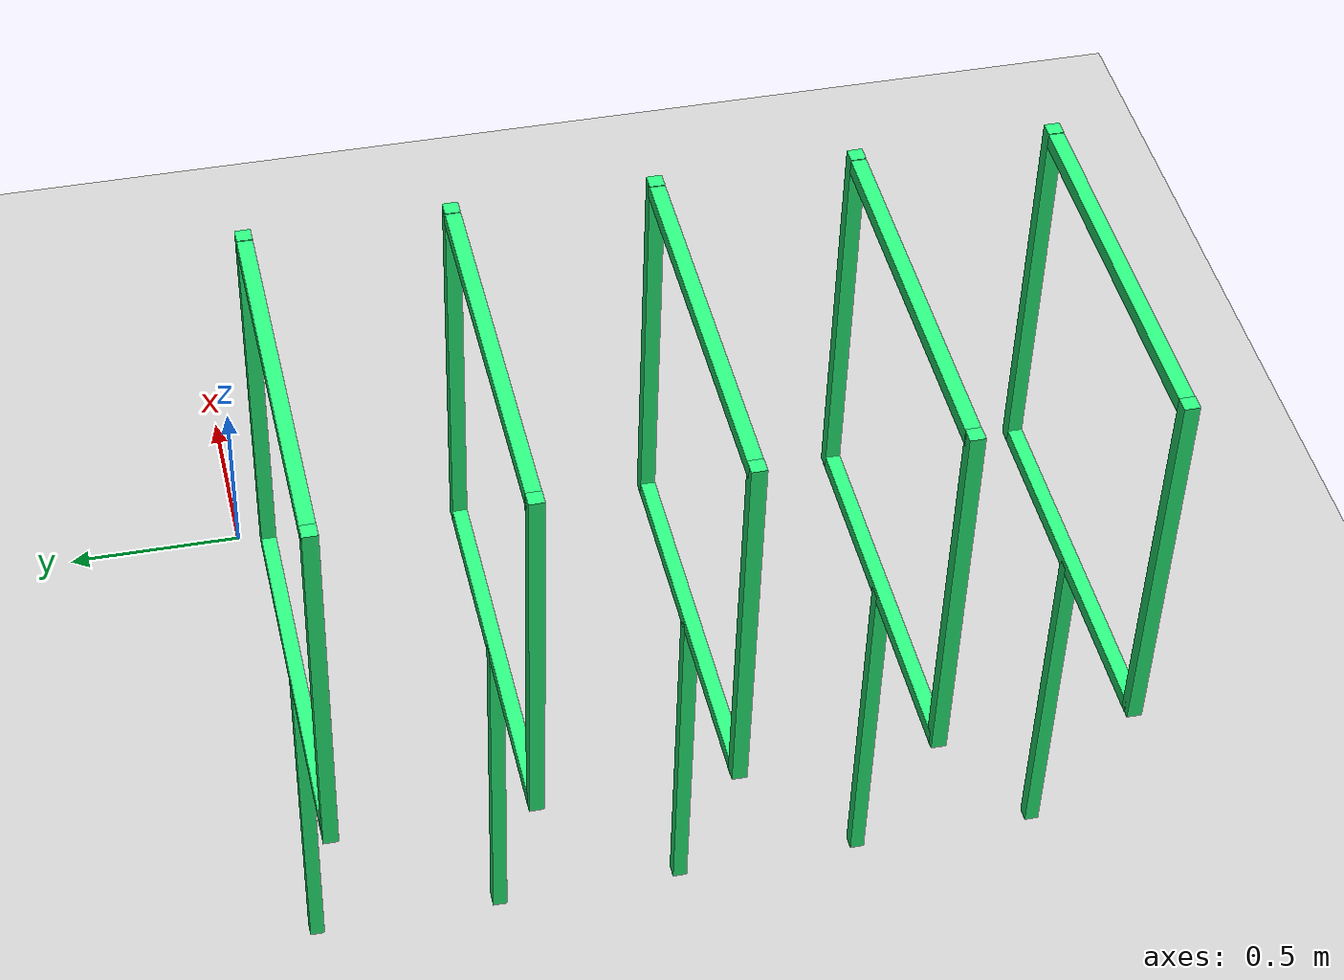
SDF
<sdf version="1.7">
 <world name="default">
  <model name="ground_plane">
   <static>1</static>
   <link name="link">
    <collision name="collision">
     <geometry><plane><normal>0 0 1</normal><size>100 100</size></plane></geometry>
     <surface><friction><ode><mu>100</mu><mu2>50</mu2></ode></friction></surface>
    </collision>
    <visual name="visual">
     <cast_shadows>0</cast_shadows>
     <geometry><plane><normal>0 0 1</normal><size>100 100</size></plane></geometry>
     <material>
      <script><uri>file://media/materials/scripts/gazebo.material</uri><name>Gazebo/Grey</name></script>
     </material>
    </visual>
   </link>
  </model>
  <model name="small_gate_4">
   <link name="rod">
    <pose>0 0 0.5 0 -0 0</pose>
    <inertial>
     <mass>1</mass>
     <inertia>
      <ixx>0.166667</ixx>
      <ixy>0</ixy>
      <ixz>0</ixz>
      <iyy>0.166667</iyy>
      <iyz>0</iyz>
      <izz>0.166667</izz>
     </inertia>
    </inertial>
    <visual name="visual">
     <geometry><box><size>0.0381 0.0381 1</size></box></geometry>
     <material>
      <shader type="vertex"><normal_map>__default__</normal_map></shader>
      <ambient>0.164 0.978 0.484 1</ambient>
      <diffuse>0.164 0.978 0.484 1</diffuse>
      <specular>0.01 0.01 0.01 1</specular>
      <emissive>0 0 0 1</emissive>
     </material>
    </visual>
    <collision name="collision">
     <geometry><box><size>0.0381 0.0381 1</size></box></geometry>
     <surface>
      <friction>
       <ode><mu>1</mu><mu2>1</mu2><fdir1>0 0 0</fdir1><slip1>0</slip1><slip2>0</slip2></ode>
       <torsional>
        <coefficient>1</coefficient>
        <patch_radius>0</patch_radius>
        <surface_radius>0</surface_radius>
        <use_patch_radius>1</use_patch_radius>
        <ode><slip>0</slip></ode>
       </torsional>
      </friction>
      <bounce><restitution_coefficient>0</restitution_coefficient><threshold>1e+06</threshold></bounce>
      <contact>
       <collide_without_contact>0</collide_without_contact>
       <collide_without_contact_bitmask>1</collide_without_contact_bitmask>
       <collide_bitmask>1</collide_bitmask>
       <ode>
        <soft_cfm>0</soft_cfm>
        <soft_erp>0.2</soft_erp>
        <kp>1e+13</kp>
        <kd>1</kd>
        <max_vel>0.01</max_vel>
        <min_depth>0</min_depth>
       </ode>
       <bullet>
        <split_impulse>1</split_impulse>
        <split_impulse_penetration_threshold>-0.01</split_impulse_penetration_threshold>
        <soft_cfm>0</soft_cfm>
        <soft_erp>0.2</soft_erp>
        <kp>1e+13</kp>
        <kd>1</kd>
       </bullet>
      </contact>
     </surface>
    </collision>
   </link>
   <link name="top_edge">
    <pose>0 0 2 0 -0 0</pose>
    <inertial>
     <mass>1</mass>
     <inertia>
      <ixx>0.166667</ixx>
      <ixy>0</ixy>
      <ixz>0</ixz>
      <iyy>0.166667</iyy>
      <iyz>0</iyz>
      <izz>0.166667</izz>
     </inertia>
    </inertial>
    <visual name="visual">
     <geometry><box><size>1 0.0381 0.0381</size></box></geometry>
     <material>
      <shader type="vertex"><normal_map>__default__</normal_map></shader>
      <ambient>0.164 0.978 0.484 1</ambient>
      <diffuse>0.164 0.978 0.484 1</diffuse>
      <specular>0.01 0.01 0.01 1</specular>
      <emissive>0 0 0 1</emissive>
     </material>
    </visual>
    <collision name="collision">
     <geometry><box><size>1 0.0381 0.0381</size></box></geometry>
     <surface>
      <friction>
       <ode><mu>1</mu><mu2>1</mu2><fdir1>0 0 0</fdir1><slip1>0</slip1><slip2>0</slip2></ode>
       <torsional>
        <coefficient>1</coefficient>
        <patch_radius>0</patch_radius>
        <surface_radius>0</surface_radius>
        <use_patch_radius>1</use_patch_radius>
        <ode><slip>0</slip></ode>
       </torsional>
      </friction>
      <bounce><restitution_coefficient>0</restitution_coefficient><threshold>1e+06</threshold></bounce>
      <contact>
       <collide_without_contact>0</collide_without_contact>
       <collide_without_contact_bitmask>1</collide_without_contact_bitmask>
       <collide_bitmask>1</collide_bitmask>
       <ode>
        <soft_cfm>0</soft_cfm>
        <soft_erp>0.2</soft_erp>
        <kp>1e+13</kp>
        <kd>1</kd>
        <max_vel>0.01</max_vel>
        <min_depth>0</min_depth>
       </ode>
       <bullet>
        <split_impulse>1</split_impulse>
        <split_impulse_penetration_threshold>-0.01</split_impulse_penetration_threshold>
        <soft_cfm>0</soft_cfm>
        <soft_erp>0.2</soft_erp>
        <kp>1e+13</kp>
        <kd>1</kd>
       </bullet>
      </contact>
     </surface>
    </collision>
   </link>
   <link name="bottom_edge">
    <pose>0 0 1 0 -0 0</pose>
    <inertial>
     <mass>1</mass>
     <inertia>
      <ixx>0.166667</ixx>
      <ixy>0</ixy>
      <ixz>0</ixz>
      <iyy>0.166667</iyy>
      <iyz>0</iyz>
      <izz>0.166667</izz>
     </inertia>
    </inertial>
    <visual name="visual">
     <geometry><box><size>1 0.0381 0.0381</size></box></geometry>
     <material>
      <shader type="vertex"><normal_map>__default__</normal_map></shader>
      <ambient>0.164 0.978 0.484 1</ambient>
      <diffuse>0.164 0.978 0.484 1</diffuse>
      <specular>0.01 0.01 0.01 1</specular>
      <emissive>0 0 0 1</emissive>
     </material>
    </visual>
    <collision name="collision">
     <geometry><box><size>1 0.0381 0.0381</size></box></geometry>
     <surface>
      <friction>
       <ode><mu>1</mu><mu2>1</mu2><fdir1>0 0 0</fdir1><slip1>0</slip1><slip2>0</slip2></ode>
       <torsional>
        <coefficient>1</coefficient>
        <patch_radius>0</patch_radius>
        <surface_radius>0</surface_radius>
        <use_patch_radius>1</use_patch_radius>
        <ode><slip>0</slip></ode>
       </torsional>
      </friction>
      <bounce><restitution_coefficient>0</restitution_coefficient><threshold>1e+06</threshold></bounce>
      <contact>
       <collide_without_contact>0</collide_without_contact>
       <collide_without_contact_bitmask>1</collide_without_contact_bitmask>
       <collide_bitmask>1</collide_bitmask>
       <ode>
        <soft_cfm>0</soft_cfm>
        <soft_erp>0.2</soft_erp>
        <kp>1e+13</kp>
        <kd>1</kd>
        <max_vel>0.01</max_vel>
        <min_depth>0</min_depth>
       </ode>
       <bullet>
        <split_impulse>1</split_impulse>
        <split_impulse_penetration_threshold>-0.01</split_impulse_penetration_threshold>
        <soft_cfm>0</soft_cfm>
        <soft_erp>0.2</soft_erp>
        <kp>1e+13</kp>
        <kd>1</kd>
       </bullet>
      </contact>
     </surface>
    </collision>
   </link>
   <link name="left_edge">
    <pose>-0.5 0 1.502 0 -0 0</pose>
    <inertial>
     <mass>1</mass>
     <inertia>
      <ixx>0.166667</ixx>
      <ixy>0</ixy>
      <ixz>0</ixz>
      <iyy>0.166667</iyy>
      <iyz>0</iyz>
      <izz>0.166667</izz>
     </inertia>
    </inertial>
    <visual name="visual">
     <geometry><box><size>0.0381 0.0381 1.0381</size></box></geometry>
     <material>
      <shader type="vertex"><normal_map>__default__</normal_map></shader>
      <ambient>0.164 0.978 0.484 1</ambient>
      <diffuse>0.164 0.978 0.484 1</diffuse>
      <specular>0.01 0.01 0.01 1</specular>
      <emissive>0 0 0 1</emissive>
     </material>
    </visual>
    <collision name="collision">
     <geometry><box><size>0.0381 0.0381 1.0381</size></box></geometry>
     <surface>
      <friction>
       <ode><mu>1</mu><mu2>1</mu2><fdir1>0 0 0</fdir1><slip1>0</slip1><slip2>0</slip2></ode>
       <torsional>
        <coefficient>1</coefficient>
        <patch_radius>0</patch_radius>
        <surface_radius>0</surface_radius>
        <use_patch_radius>1</use_patch_radius>
        <ode><slip>0</slip></ode>
       </torsional>
      </friction>
      <bounce><restitution_coefficient>0</restitution_coefficient><threshold>1e+06</threshold></bounce>
      <contact>
       <collide_without_contact>0</collide_without_contact>
       <collide_without_contact_bitmask>1</collide_without_contact_bitmask>
       <collide_bitmask>1</collide_bitmask>
       <ode>
        <soft_cfm>0</soft_cfm>
        <soft_erp>0.2</soft_erp>
        <kp>1e+13</kp>
        <kd>1</kd>
        <max_vel>0.01</max_vel>
        <min_depth>0</min_depth>
       </ode>
       <bullet>
        <split_impulse>1</split_impulse>
        <split_impulse_penetration_threshold>-0.01</split_impulse_penetration_threshold>
        <soft_cfm>0</soft_cfm>
        <soft_erp>0.2</soft_erp>
        <kp>1e+13</kp>
        <kd>1</kd>
       </bullet>
      </contact>
     </surface>
    </collision>
   </link>
   <link name="right_edge">
    <pose>0.5 0 1.502 0 -0 0</pose>
    <inertial>
     <mass>1</mass>
     <inertia>
      <ixx>0.166667</ixx>
      <ixy>0</ixy>
      <ixz>0</ixz>
      <iyy>0.166667</iyy>
      <iyz>0</iyz>
      <izz>0.166667</izz>
     </inertia>
    </inertial>
    <visual name="visual">
     <geometry><box><size>0.0381 0.0381 1.0381</size></box></geometry>
     <material>
      <shader type="vertex"><normal_map>__default__</normal_map></shader>
      <ambient>0.164 0.978 0.484 1</ambient>
      <diffuse>0.164 0.978 0.484 1</diffuse>
      <specular>0.01 0.01 0.01 1</specular>
      <emissive>0 0 0 1</emissive>
     </material>
    </visual>
    <collision name="collision">
     <geometry><box><size>0.0381 0.0381 1.0381</size></box></geometry>
     <surface>
      <friction>
       <ode><mu>1</mu><mu2>1</mu2><fdir1>0 0 0</fdir1><slip1>0</slip1><slip2>0</slip2></ode>
       <torsional>
        <coefficient>1</coefficient>
        <patch_radius>0</patch_radius>
        <surface_radius>0</surface_radius>
        <use_patch_radius>1</use_patch_radius>
        <ode><slip>0</slip></ode>
       </torsional>
      </friction>
      <bounce><restitution_coefficient>0</restitution_coefficient><threshold>1e+06</threshold></bounce>
      <contact>
       <collide_without_contact>0</collide_without_contact>
       <collide_without_contact_bitmask>1</collide_without_contact_bitmask>
       <collide_bitmask>1</collide_bitmask>
       <ode>
        <soft_cfm>0</soft_cfm>
        <soft_erp>0.2</soft_erp>
        <kp>1e+13</kp>
        <kd>1</kd>
        <max_vel>0.01</max_vel>
        <min_depth>0</min_depth>
       </ode>
       <bullet>
        <split_impulse>1</split_impulse>
        <split_impulse_penetration_threshold>-0.01</split_impulse_penetration_threshold>
        <soft_cfm>0</soft_cfm>
        <soft_erp>0.2</soft_erp>
        <kp>1e+13</kp>
        <kd>1</kd>
       </bullet>
      </contact>
     </surface>
    </collision>
   </link>
   <static>1</static>
   <pose>-1.5 -2 0 0 -0 0</pose>
  </model>
  <model name="small_gate_5">
   <link name="rod">
    <pose>0 0 0.5 0 -0 0</pose>
    <inertial>
     <mass>1</mass>
     <inertia>
      <ixx>0.166667</ixx>
      <ixy>0</ixy>
      <ixz>0</ixz>
      <iyy>0.166667</iyy>
      <iyz>0</iyz>
      <izz>0.166667</izz>
     </inertia>
    </inertial>
    <visual name="visual">
     <geometry><box><size>0.0381 0.0381 1</size></box></geometry>
     <material>
      <shader type="vertex"><normal_map>__default__</normal_map></shader>
      <ambient>0.164 0.978 0.484 1</ambient>
      <diffuse>0.164 0.978 0.484 1</diffuse>
      <specular>0.01 0.01 0.01 1</specular>
      <emissive>0 0 0 1</emissive>
     </material>
    </visual>
    <collision name="collision">
     <geometry><box><size>0.0381 0.0381 1</size></box></geometry>
     <surface>
      <friction>
       <ode><mu>1</mu><mu2>1</mu2><fdir1>0 0 0</fdir1><slip1>0</slip1><slip2>0</slip2></ode>
       <torsional>
        <coefficient>1</coefficient>
        <patch_radius>0</patch_radius>
        <surface_radius>0</surface_radius>
        <use_patch_radius>1</use_patch_radius>
        <ode><slip>0</slip></ode>
       </torsional>
      </friction>
      <bounce><restitution_coefficient>0</restitution_coefficient><threshold>1e+06</threshold></bounce>
      <contact>
       <collide_without_contact>0</collide_without_contact>
       <collide_without_contact_bitmask>1</collide_without_contact_bitmask>
       <collide_bitmask>1</collide_bitmask>
       <ode>
        <soft_cfm>0</soft_cfm>
        <soft_erp>0.2</soft_erp>
        <kp>1e+13</kp>
        <kd>1</kd>
        <max_vel>0.01</max_vel>
        <min_depth>0</min_depth>
       </ode>
       <bullet>
        <split_impulse>1</split_impulse>
        <split_impulse_penetration_threshold>-0.01</split_impulse_penetration_threshold>
        <soft_cfm>0</soft_cfm>
        <soft_erp>0.2</soft_erp>
        <kp>1e+13</kp>
        <kd>1</kd>
       </bullet>
      </contact>
     </surface>
    </collision>
   </link>
   <link name="top_edge">
    <pose>0 0 2 0 -0 0</pose>
    <inertial>
     <mass>1</mass>
     <inertia>
      <ixx>0.166667</ixx>
      <ixy>0</ixy>
      <ixz>0</ixz>
      <iyy>0.166667</iyy>
      <iyz>0</iyz>
      <izz>0.166667</izz>
     </inertia>
    </inertial>
    <visual name="visual">
     <geometry><box><size>1 0.0381 0.0381</size></box></geometry>
     <material>
      <shader type="vertex"><normal_map>__default__</normal_map></shader>
      <ambient>0.164 0.978 0.484 1</ambient>
      <diffuse>0.164 0.978 0.484 1</diffuse>
      <specular>0.01 0.01 0.01 1</specular>
      <emissive>0 0 0 1</emissive>
     </material>
    </visual>
    <collision name="collision">
     <geometry><box><size>1 0.0381 0.0381</size></box></geometry>
     <surface>
      <friction>
       <ode><mu>1</mu><mu2>1</mu2><fdir1>0 0 0</fdir1><slip1>0</slip1><slip2>0</slip2></ode>
       <torsional>
        <coefficient>1</coefficient>
        <patch_radius>0</patch_radius>
        <surface_radius>0</surface_radius>
        <use_patch_radius>1</use_patch_radius>
        <ode><slip>0</slip></ode>
       </torsional>
      </friction>
      <bounce><restitution_coefficient>0</restitution_coefficient><threshold>1e+06</threshold></bounce>
      <contact>
       <collide_without_contact>0</collide_without_contact>
       <collide_without_contact_bitmask>1</collide_without_contact_bitmask>
       <collide_bitmask>1</collide_bitmask>
       <ode>
        <soft_cfm>0</soft_cfm>
        <soft_erp>0.2</soft_erp>
        <kp>1e+13</kp>
        <kd>1</kd>
        <max_vel>0.01</max_vel>
        <min_depth>0</min_depth>
       </ode>
       <bullet>
        <split_impulse>1</split_impulse>
        <split_impulse_penetration_threshold>-0.01</split_impulse_penetration_threshold>
        <soft_cfm>0</soft_cfm>
        <soft_erp>0.2</soft_erp>
        <kp>1e+13</kp>
        <kd>1</kd>
       </bullet>
      </contact>
     </surface>
    </collision>
   </link>
   <link name="bottom_edge">
    <pose>0 0 1 0 -0 0</pose>
    <inertial>
     <mass>1</mass>
     <inertia>
      <ixx>0.166667</ixx>
      <ixy>0</ixy>
      <ixz>0</ixz>
      <iyy>0.166667</iyy>
      <iyz>0</iyz>
      <izz>0.166667</izz>
     </inertia>
    </inertial>
    <visual name="visual">
     <geometry><box><size>1 0.0381 0.0381</size></box></geometry>
     <material>
      <shader type="vertex"><normal_map>__default__</normal_map></shader>
      <ambient>0.164 0.978 0.484 1</ambient>
      <diffuse>0.164 0.978 0.484 1</diffuse>
      <specular>0.01 0.01 0.01 1</specular>
      <emissive>0 0 0 1</emissive>
     </material>
    </visual>
    <collision name="collision">
     <geometry><box><size>1 0.0381 0.0381</size></box></geometry>
     <surface>
      <friction>
       <ode><mu>1</mu><mu2>1</mu2><fdir1>0 0 0</fdir1><slip1>0</slip1><slip2>0</slip2></ode>
       <torsional>
        <coefficient>1</coefficient>
        <patch_radius>0</patch_radius>
        <surface_radius>0</surface_radius>
        <use_patch_radius>1</use_patch_radius>
        <ode><slip>0</slip></ode>
       </torsional>
      </friction>
      <bounce><restitution_coefficient>0</restitution_coefficient><threshold>1e+06</threshold></bounce>
      <contact>
       <collide_without_contact>0</collide_without_contact>
       <collide_without_contact_bitmask>1</collide_without_contact_bitmask>
       <collide_bitmask>1</collide_bitmask>
       <ode>
        <soft_cfm>0</soft_cfm>
        <soft_erp>0.2</soft_erp>
        <kp>1e+13</kp>
        <kd>1</kd>
        <max_vel>0.01</max_vel>
        <min_depth>0</min_depth>
       </ode>
       <bullet>
        <split_impulse>1</split_impulse>
        <split_impulse_penetration_threshold>-0.01</split_impulse_penetration_threshold>
        <soft_cfm>0</soft_cfm>
        <soft_erp>0.2</soft_erp>
        <kp>1e+13</kp>
        <kd>1</kd>
       </bullet>
      </contact>
     </surface>
    </collision>
   </link>
   <link name="left_edge">
    <pose>-0.5 0 1.502 0 -0 0</pose>
    <inertial>
     <mass>1</mass>
     <inertia>
      <ixx>0.166667</ixx>
      <ixy>0</ixy>
      <ixz>0</ixz>
      <iyy>0.166667</iyy>
      <iyz>0</iyz>
      <izz>0.166667</izz>
     </inertia>
    </inertial>
    <visual name="visual">
     <geometry><box><size>0.0381 0.0381 1.0381</size></box></geometry>
     <material>
      <shader type="vertex"><normal_map>__default__</normal_map></shader>
      <ambient>0.164 0.978 0.484 1</ambient>
      <diffuse>0.164 0.978 0.484 1</diffuse>
      <specular>0.01 0.01 0.01 1</specular>
      <emissive>0 0 0 1</emissive>
     </material>
    </visual>
    <collision name="collision">
     <geometry><box><size>0.0381 0.0381 1.0381</size></box></geometry>
     <surface>
      <friction>
       <ode><mu>1</mu><mu2>1</mu2><fdir1>0 0 0</fdir1><slip1>0</slip1><slip2>0</slip2></ode>
       <torsional>
        <coefficient>1</coefficient>
        <patch_radius>0</patch_radius>
        <surface_radius>0</surface_radius>
        <use_patch_radius>1</use_patch_radius>
        <ode><slip>0</slip></ode>
       </torsional>
      </friction>
      <bounce><restitution_coefficient>0</restitution_coefficient><threshold>1e+06</threshold></bounce>
      <contact>
       <collide_without_contact>0</collide_without_contact>
       <collide_without_contact_bitmask>1</collide_without_contact_bitmask>
       <collide_bitmask>1</collide_bitmask>
       <ode>
        <soft_cfm>0</soft_cfm>
        <soft_erp>0.2</soft_erp>
        <kp>1e+13</kp>
        <kd>1</kd>
        <max_vel>0.01</max_vel>
        <min_depth>0</min_depth>
       </ode>
       <bullet>
        <split_impulse>1</split_impulse>
        <split_impulse_penetration_threshold>-0.01</split_impulse_penetration_threshold>
        <soft_cfm>0</soft_cfm>
        <soft_erp>0.2</soft_erp>
        <kp>1e+13</kp>
        <kd>1</kd>
       </bullet>
      </contact>
     </surface>
    </collision>
   </link>
   <link name="right_edge">
    <pose>0.5 0 1.502 0 -0 0</pose>
    <inertial>
     <mass>1</mass>
     <inertia>
      <ixx>0.166667</ixx>
      <ixy>0</ixy>
      <ixz>0</ixz>
      <iyy>0.166667</iyy>
      <iyz>0</iyz>
      <izz>0.166667</izz>
     </inertia>
    </inertial>
    <visual name="visual">
     <geometry><box><size>0.0381 0.0381 1.0381</size></box></geometry>
     <material>
      <shader type="vertex"><normal_map>__default__</normal_map></shader>
      <ambient>0.164 0.978 0.484 1</ambient>
      <diffuse>0.164 0.978 0.484 1</diffuse>
      <specular>0.01 0.01 0.01 1</specular>
      <emissive>0 0 0 1</emissive>
     </material>
    </visual>
    <collision name="collision">
     <geometry><box><size>0.0381 0.0381 1.0381</size></box></geometry>
     <surface>
      <friction>
       <ode><mu>1</mu><mu2>1</mu2><fdir1>0 0 0</fdir1><slip1>0</slip1><slip2>0</slip2></ode>
       <torsional>
        <coefficient>1</coefficient>
        <patch_radius>0</patch_radius>
        <surface_radius>0</surface_radius>
        <use_patch_radius>1</use_patch_radius>
        <ode><slip>0</slip></ode>
       </torsional>
      </friction>
      <bounce><restitution_coefficient>0</restitution_coefficient><threshold>1e+06</threshold></bounce>
      <contact>
       <collide_without_contact>0</collide_without_contact>
       <collide_without_contact_bitmask>1</collide_without_contact_bitmask>
       <collide_bitmask>1</collide_bitmask>
       <ode>
        <soft_cfm>0</soft_cfm>
        <soft_erp>0.2</soft_erp>
        <kp>1e+13</kp>
        <kd>1</kd>
        <max_vel>0.01</max_vel>
        <min_depth>0</min_depth>
       </ode>
       <bullet>
        <split_impulse>1</split_impulse>
        <split_impulse_penetration_threshold>-0.01</split_impulse_penetration_threshold>
        <soft_cfm>0</soft_cfm>
        <soft_erp>0.2</soft_erp>
        <kp>1e+13</kp>
        <kd>1</kd>
       </bullet>
      </contact>
     </surface>
    </collision>
   </link>
   <static>1</static>
   <pose>-1.5 -1.5 0 0 -0 0</pose>
  </model>
  <model name="small_gate_6">
   <link name="rod">
    <pose>0 0 0.5 0 -0 0</pose>
    <inertial>
     <mass>1</mass>
     <inertia>
      <ixx>0.166667</ixx>
      <ixy>0</ixy>
      <ixz>0</ixz>
      <iyy>0.166667</iyy>
      <iyz>0</iyz>
      <izz>0.166667</izz>
     </inertia>
    </inertial>
    <visual name="visual">
     <geometry><box><size>0.0381 0.0381 1</size></box></geometry>
     <material>
      <shader type="vertex"><normal_map>__default__</normal_map></shader>
      <ambient>0.164 0.978 0.484 1</ambient>
      <diffuse>0.164 0.978 0.484 1</diffuse>
      <specular>0.01 0.01 0.01 1</specular>
      <emissive>0 0 0 1</emissive>
     </material>
    </visual>
    <collision name="collision">
     <geometry><box><size>0.0381 0.0381 1</size></box></geometry>
     <surface>
      <friction>
       <ode><mu>1</mu><mu2>1</mu2><fdir1>0 0 0</fdir1><slip1>0</slip1><slip2>0</slip2></ode>
       <torsional>
        <coefficient>1</coefficient>
        <patch_radius>0</patch_radius>
        <surface_radius>0</surface_radius>
        <use_patch_radius>1</use_patch_radius>
        <ode><slip>0</slip></ode>
       </torsional>
      </friction>
      <bounce><restitution_coefficient>0</restitution_coefficient><threshold>1e+06</threshold></bounce>
      <contact>
       <collide_without_contact>0</collide_without_contact>
       <collide_without_contact_bitmask>1</collide_without_contact_bitmask>
       <collide_bitmask>1</collide_bitmask>
       <ode>
        <soft_cfm>0</soft_cfm>
        <soft_erp>0.2</soft_erp>
        <kp>1e+13</kp>
        <kd>1</kd>
        <max_vel>0.01</max_vel>
        <min_depth>0</min_depth>
       </ode>
       <bullet>
        <split_impulse>1</split_impulse>
        <split_impulse_penetration_threshold>-0.01</split_impulse_penetration_threshold>
        <soft_cfm>0</soft_cfm>
        <soft_erp>0.2</soft_erp>
        <kp>1e+13</kp>
        <kd>1</kd>
       </bullet>
      </contact>
     </surface>
    </collision>
   </link>
   <link name="top_edge">
    <pose>0 0 2 0 -0 0</pose>
    <inertial>
     <mass>1</mass>
     <inertia>
      <ixx>0.166667</ixx>
      <ixy>0</ixy>
      <ixz>0</ixz>
      <iyy>0.166667</iyy>
      <iyz>0</iyz>
      <izz>0.166667</izz>
     </inertia>
    </inertial>
    <visual name="visual">
     <geometry><box><size>1 0.0381 0.0381</size></box></geometry>
     <material>
      <shader type="vertex"><normal_map>__default__</normal_map></shader>
      <ambient>0.164 0.978 0.484 1</ambient>
      <diffuse>0.164 0.978 0.484 1</diffuse>
      <specular>0.01 0.01 0.01 1</specular>
      <emissive>0 0 0 1</emissive>
     </material>
    </visual>
    <collision name="collision">
     <geometry><box><size>1 0.0381 0.0381</size></box></geometry>
     <surface>
      <friction>
       <ode><mu>1</mu><mu2>1</mu2><fdir1>0 0 0</fdir1><slip1>0</slip1><slip2>0</slip2></ode>
       <torsional>
        <coefficient>1</coefficient>
        <patch_radius>0</patch_radius>
        <surface_radius>0</surface_radius>
        <use_patch_radius>1</use_patch_radius>
        <ode><slip>0</slip></ode>
       </torsional>
      </friction>
      <bounce><restitution_coefficient>0</restitution_coefficient><threshold>1e+06</threshold></bounce>
      <contact>
       <collide_without_contact>0</collide_without_contact>
       <collide_without_contact_bitmask>1</collide_without_contact_bitmask>
       <collide_bitmask>1</collide_bitmask>
       <ode>
        <soft_cfm>0</soft_cfm>
        <soft_erp>0.2</soft_erp>
        <kp>1e+13</kp>
        <kd>1</kd>
        <max_vel>0.01</max_vel>
        <min_depth>0</min_depth>
       </ode>
       <bullet>
        <split_impulse>1</split_impulse>
        <split_impulse_penetration_threshold>-0.01</split_impulse_penetration_threshold>
        <soft_cfm>0</soft_cfm>
        <soft_erp>0.2</soft_erp>
        <kp>1e+13</kp>
        <kd>1</kd>
       </bullet>
      </contact>
     </surface>
    </collision>
   </link>
   <link name="bottom_edge">
    <pose>0 0 1 0 -0 0</pose>
    <inertial>
     <mass>1</mass>
     <inertia>
      <ixx>0.166667</ixx>
      <ixy>0</ixy>
      <ixz>0</ixz>
      <iyy>0.166667</iyy>
      <iyz>0</iyz>
      <izz>0.166667</izz>
     </inertia>
    </inertial>
    <visual name="visual">
     <geometry><box><size>1 0.0381 0.0381</size></box></geometry>
     <material>
      <shader type="vertex"><normal_map>__default__</normal_map></shader>
      <ambient>0.164 0.978 0.484 1</ambient>
      <diffuse>0.164 0.978 0.484 1</diffuse>
      <specular>0.01 0.01 0.01 1</specular>
      <emissive>0 0 0 1</emissive>
     </material>
    </visual>
    <collision name="collision">
     <geometry><box><size>1 0.0381 0.0381</size></box></geometry>
     <surface>
      <friction>
       <ode><mu>1</mu><mu2>1</mu2><fdir1>0 0 0</fdir1><slip1>0</slip1><slip2>0</slip2></ode>
       <torsional>
        <coefficient>1</coefficient>
        <patch_radius>0</patch_radius>
        <surface_radius>0</surface_radius>
        <use_patch_radius>1</use_patch_radius>
        <ode><slip>0</slip></ode>
       </torsional>
      </friction>
      <bounce><restitution_coefficient>0</restitution_coefficient><threshold>1e+06</threshold></bounce>
      <contact>
       <collide_without_contact>0</collide_without_contact>
       <collide_without_contact_bitmask>1</collide_without_contact_bitmask>
       <collide_bitmask>1</collide_bitmask>
       <ode>
        <soft_cfm>0</soft_cfm>
        <soft_erp>0.2</soft_erp>
        <kp>1e+13</kp>
        <kd>1</kd>
        <max_vel>0.01</max_vel>
        <min_depth>0</min_depth>
       </ode>
       <bullet>
        <split_impulse>1</split_impulse>
        <split_impulse_penetration_threshold>-0.01</split_impulse_penetration_threshold>
        <soft_cfm>0</soft_cfm>
        <soft_erp>0.2</soft_erp>
        <kp>1e+13</kp>
        <kd>1</kd>
       </bullet>
      </contact>
     </surface>
    </collision>
   </link>
   <link name="left_edge">
    <pose>-0.5 0 1.502 0 -0 0</pose>
    <inertial>
     <mass>1</mass>
     <inertia>
      <ixx>0.166667</ixx>
      <ixy>0</ixy>
      <ixz>0</ixz>
      <iyy>0.166667</iyy>
      <iyz>0</iyz>
      <izz>0.166667</izz>
     </inertia>
    </inertial>
    <visual name="visual">
     <geometry><box><size>0.0381 0.0381 1.0381</size></box></geometry>
     <material>
      <shader type="vertex"><normal_map>__default__</normal_map></shader>
      <ambient>0.164 0.978 0.484 1</ambient>
      <diffuse>0.164 0.978 0.484 1</diffuse>
      <specular>0.01 0.01 0.01 1</specular>
      <emissive>0 0 0 1</emissive>
     </material>
    </visual>
    <collision name="collision">
     <geometry><box><size>0.0381 0.0381 1.0381</size></box></geometry>
     <surface>
      <friction>
       <ode><mu>1</mu><mu2>1</mu2><fdir1>0 0 0</fdir1><slip1>0</slip1><slip2>0</slip2></ode>
       <torsional>
        <coefficient>1</coefficient>
        <patch_radius>0</patch_radius>
        <surface_radius>0</surface_radius>
        <use_patch_radius>1</use_patch_radius>
        <ode><slip>0</slip></ode>
       </torsional>
      </friction>
      <bounce><restitution_coefficient>0</restitution_coefficient><threshold>1e+06</threshold></bounce>
      <contact>
       <collide_without_contact>0</collide_without_contact>
       <collide_without_contact_bitmask>1</collide_without_contact_bitmask>
       <collide_bitmask>1</collide_bitmask>
       <ode>
        <soft_cfm>0</soft_cfm>
        <soft_erp>0.2</soft_erp>
        <kp>1e+13</kp>
        <kd>1</kd>
        <max_vel>0.01</max_vel>
        <min_depth>0</min_depth>
       </ode>
       <bullet>
        <split_impulse>1</split_impulse>
        <split_impulse_penetration_threshold>-0.01</split_impulse_penetration_threshold>
        <soft_cfm>0</soft_cfm>
        <soft_erp>0.2</soft_erp>
        <kp>1e+13</kp>
        <kd>1</kd>
       </bullet>
      </contact>
     </surface>
    </collision>
   </link>
   <link name="right_edge">
    <pose>0.5 0 1.502 0 -0 0</pose>
    <inertial>
     <mass>1</mass>
     <inertia>
      <ixx>0.166667</ixx>
      <ixy>0</ixy>
      <ixz>0</ixz>
      <iyy>0.166667</iyy>
      <iyz>0</iyz>
      <izz>0.166667</izz>
     </inertia>
    </inertial>
    <visual name="visual">
     <geometry><box><size>0.0381 0.0381 1.0381</size></box></geometry>
     <material>
      <shader type="vertex"><normal_map>__default__</normal_map></shader>
      <ambient>0.164 0.978 0.484 1</ambient>
      <diffuse>0.164 0.978 0.484 1</diffuse>
      <specular>0.01 0.01 0.01 1</specular>
      <emissive>0 0 0 1</emissive>
     </material>
    </visual>
    <collision name="collision">
     <geometry><box><size>0.0381 0.0381 1.0381</size></box></geometry>
     <surface>
      <friction>
       <ode><mu>1</mu><mu2>1</mu2><fdir1>0 0 0</fdir1><slip1>0</slip1><slip2>0</slip2></ode>
       <torsional>
        <coefficient>1</coefficient>
        <patch_radius>0</patch_radius>
        <surface_radius>0</surface_radius>
        <use_patch_radius>1</use_patch_radius>
        <ode><slip>0</slip></ode>
       </torsional>
      </friction>
      <bounce><restitution_coefficient>0</restitution_coefficient><threshold>1e+06</threshold></bounce>
      <contact>
       <collide_without_contact>0</collide_without_contact>
       <collide_without_contact_bitmask>1</collide_without_contact_bitmask>
       <collide_bitmask>1</collide_bitmask>
       <ode>
        <soft_cfm>0</soft_cfm>
        <soft_erp>0.2</soft_erp>
        <kp>1e+13</kp>
        <kd>1</kd>
        <max_vel>0.01</max_vel>
        <min_depth>0</min_depth>
       </ode>
       <bullet>
        <split_impulse>1</split_impulse>
        <split_impulse_penetration_threshold>-0.01</split_impulse_penetration_threshold>
        <soft_cfm>0</soft_cfm>
        <soft_erp>0.2</soft_erp>
        <kp>1e+13</kp>
        <kd>1</kd>
       </bullet>
      </contact>
     </surface>
    </collision>
   </link>
   <static>1</static>
   <pose>-1.5 -1 0 0 -0 0</pose>
  </model>
  <model name="small_gate_7">
   <link name="rod">
    <pose>0 0 0.5 0 -0 0</pose>
    <inertial>
     <mass>1</mass>
     <inertia>
      <ixx>0.166667</ixx>
      <ixy>0</ixy>
      <ixz>0</ixz>
      <iyy>0.166667</iyy>
      <iyz>0</iyz>
      <izz>0.166667</izz>
     </inertia>
    </inertial>
    <visual name="visual">
     <geometry><box><size>0.0381 0.0381 1</size></box></geometry>
     <material>
      <shader type="vertex"><normal_map>__default__</normal_map></shader>
      <ambient>0.164 0.978 0.484 1</ambient>
      <diffuse>0.164 0.978 0.484 1</diffuse>
      <specular>0.01 0.01 0.01 1</specular>
      <emissive>0 0 0 1</emissive>
     </material>
    </visual>
    <collision name="collision">
     <geometry><box><size>0.0381 0.0381 1</size></box></geometry>
     <surface>
      <friction>
       <ode><mu>1</mu><mu2>1</mu2><fdir1>0 0 0</fdir1><slip1>0</slip1><slip2>0</slip2></ode>
       <torsional>
        <coefficient>1</coefficient>
        <patch_radius>0</patch_radius>
        <surface_radius>0</surface_radius>
        <use_patch_radius>1</use_patch_radius>
        <ode><slip>0</slip></ode>
       </torsional>
      </friction>
      <bounce><restitution_coefficient>0</restitution_coefficient><threshold>1e+06</threshold></bounce>
      <contact>
       <collide_without_contact>0</collide_without_contact>
       <collide_without_contact_bitmask>1</collide_without_contact_bitmask>
       <collide_bitmask>1</collide_bitmask>
       <ode>
        <soft_cfm>0</soft_cfm>
        <soft_erp>0.2</soft_erp>
        <kp>1e+13</kp>
        <kd>1</kd>
        <max_vel>0.01</max_vel>
        <min_depth>0</min_depth>
       </ode>
       <bullet>
        <split_impulse>1</split_impulse>
        <split_impulse_penetration_threshold>-0.01</split_impulse_penetration_threshold>
        <soft_cfm>0</soft_cfm>
        <soft_erp>0.2</soft_erp>
        <kp>1e+13</kp>
        <kd>1</kd>
       </bullet>
      </contact>
     </surface>
    </collision>
   </link>
   <link name="top_edge">
    <pose>0 0 2 0 -0 0</pose>
    <inertial>
     <mass>1</mass>
     <inertia>
      <ixx>0.166667</ixx>
      <ixy>0</ixy>
      <ixz>0</ixz>
      <iyy>0.166667</iyy>
      <iyz>0</iyz>
      <izz>0.166667</izz>
     </inertia>
    </inertial>
    <visual name="visual">
     <geometry><box><size>1 0.0381 0.0381</size></box></geometry>
     <material>
      <shader type="vertex"><normal_map>__default__</normal_map></shader>
      <ambient>0.164 0.978 0.484 1</ambient>
      <diffuse>0.164 0.978 0.484 1</diffuse>
      <specular>0.01 0.01 0.01 1</specular>
      <emissive>0 0 0 1</emissive>
     </material>
    </visual>
    <collision name="collision">
     <geometry><box><size>1 0.0381 0.0381</size></box></geometry>
     <surface>
      <friction>
       <ode><mu>1</mu><mu2>1</mu2><fdir1>0 0 0</fdir1><slip1>0</slip1><slip2>0</slip2></ode>
       <torsional>
        <coefficient>1</coefficient>
        <patch_radius>0</patch_radius>
        <surface_radius>0</surface_radius>
        <use_patch_radius>1</use_patch_radius>
        <ode><slip>0</slip></ode>
       </torsional>
      </friction>
      <bounce><restitution_coefficient>0</restitution_coefficient><threshold>1e+06</threshold></bounce>
      <contact>
       <collide_without_contact>0</collide_without_contact>
       <collide_without_contact_bitmask>1</collide_without_contact_bitmask>
       <collide_bitmask>1</collide_bitmask>
       <ode>
        <soft_cfm>0</soft_cfm>
        <soft_erp>0.2</soft_erp>
        <kp>1e+13</kp>
        <kd>1</kd>
        <max_vel>0.01</max_vel>
        <min_depth>0</min_depth>
       </ode>
       <bullet>
        <split_impulse>1</split_impulse>
        <split_impulse_penetration_threshold>-0.01</split_impulse_penetration_threshold>
        <soft_cfm>0</soft_cfm>
        <soft_erp>0.2</soft_erp>
        <kp>1e+13</kp>
        <kd>1</kd>
       </bullet>
      </contact>
     </surface>
    </collision>
   </link>
   <link name="bottom_edge">
    <pose>0 0 1 0 -0 0</pose>
    <inertial>
     <mass>1</mass>
     <inertia>
      <ixx>0.166667</ixx>
      <ixy>0</ixy>
      <ixz>0</ixz>
      <iyy>0.166667</iyy>
      <iyz>0</iyz>
      <izz>0.166667</izz>
     </inertia>
    </inertial>
    <visual name="visual">
     <geometry><box><size>1 0.0381 0.0381</size></box></geometry>
     <material>
      <shader type="vertex"><normal_map>__default__</normal_map></shader>
      <ambient>0.164 0.978 0.484 1</ambient>
      <diffuse>0.164 0.978 0.484 1</diffuse>
      <specular>0.01 0.01 0.01 1</specular>
      <emissive>0 0 0 1</emissive>
     </material>
    </visual>
    <collision name="collision">
     <geometry><box><size>1 0.0381 0.0381</size></box></geometry>
     <surface>
      <friction>
       <ode><mu>1</mu><mu2>1</mu2><fdir1>0 0 0</fdir1><slip1>0</slip1><slip2>0</slip2></ode>
       <torsional>
        <coefficient>1</coefficient>
        <patch_radius>0</patch_radius>
        <surface_radius>0</surface_radius>
        <use_patch_radius>1</use_patch_radius>
        <ode><slip>0</slip></ode>
       </torsional>
      </friction>
      <bounce><restitution_coefficient>0</restitution_coefficient><threshold>1e+06</threshold></bounce>
      <contact>
       <collide_without_contact>0</collide_without_contact>
       <collide_without_contact_bitmask>1</collide_without_contact_bitmask>
       <collide_bitmask>1</collide_bitmask>
       <ode>
        <soft_cfm>0</soft_cfm>
        <soft_erp>0.2</soft_erp>
        <kp>1e+13</kp>
        <kd>1</kd>
        <max_vel>0.01</max_vel>
        <min_depth>0</min_depth>
       </ode>
       <bullet>
        <split_impulse>1</split_impulse>
        <split_impulse_penetration_threshold>-0.01</split_impulse_penetration_threshold>
        <soft_cfm>0</soft_cfm>
        <soft_erp>0.2</soft_erp>
        <kp>1e+13</kp>
        <kd>1</kd>
       </bullet>
      </contact>
     </surface>
    </collision>
   </link>
   <link name="left_edge">
    <pose>-0.5 0 1.502 0 -0 0</pose>
    <inertial>
     <mass>1</mass>
     <inertia>
      <ixx>0.166667</ixx>
      <ixy>0</ixy>
      <ixz>0</ixz>
      <iyy>0.166667</iyy>
      <iyz>0</iyz>
      <izz>0.166667</izz>
     </inertia>
    </inertial>
    <visual name="visual">
     <geometry><box><size>0.0381 0.0381 1.0381</size></box></geometry>
     <material>
      <shader type="vertex"><normal_map>__default__</normal_map></shader>
      <ambient>0.164 0.978 0.484 1</ambient>
      <diffuse>0.164 0.978 0.484 1</diffuse>
      <specular>0.01 0.01 0.01 1</specular>
      <emissive>0 0 0 1</emissive>
     </material>
    </visual>
    <collision name="collision">
     <geometry><box><size>0.0381 0.0381 1.0381</size></box></geometry>
     <surface>
      <friction>
       <ode><mu>1</mu><mu2>1</mu2><fdir1>0 0 0</fdir1><slip1>0</slip1><slip2>0</slip2></ode>
       <torsional>
        <coefficient>1</coefficient>
        <patch_radius>0</patch_radius>
        <surface_radius>0</surface_radius>
        <use_patch_radius>1</use_patch_radius>
        <ode><slip>0</slip></ode>
       </torsional>
      </friction>
      <bounce><restitution_coefficient>0</restitution_coefficient><threshold>1e+06</threshold></bounce>
      <contact>
       <collide_without_contact>0</collide_without_contact>
       <collide_without_contact_bitmask>1</collide_without_contact_bitmask>
       <collide_bitmask>1</collide_bitmask>
       <ode>
        <soft_cfm>0</soft_cfm>
        <soft_erp>0.2</soft_erp>
        <kp>1e+13</kp>
        <kd>1</kd>
        <max_vel>0.01</max_vel>
        <min_depth>0</min_depth>
       </ode>
       <bullet>
        <split_impulse>1</split_impulse>
        <split_impulse_penetration_threshold>-0.01</split_impulse_penetration_threshold>
        <soft_cfm>0</soft_cfm>
        <soft_erp>0.2</soft_erp>
        <kp>1e+13</kp>
        <kd>1</kd>
       </bullet>
      </contact>
     </surface>
    </collision>
   </link>
   <link name="right_edge">
    <pose>0.5 0 1.502 0 -0 0</pose>
    <inertial>
     <mass>1</mass>
     <inertia>
      <ixx>0.166667</ixx>
      <ixy>0</ixy>
      <ixz>0</ixz>
      <iyy>0.166667</iyy>
      <iyz>0</iyz>
      <izz>0.166667</izz>
     </inertia>
    </inertial>
    <visual name="visual">
     <geometry><box><size>0.0381 0.0381 1.0381</size></box></geometry>
     <material>
      <shader type="vertex"><normal_map>__default__</normal_map></shader>
      <ambient>0.164 0.978 0.484 1</ambient>
      <diffuse>0.164 0.978 0.484 1</diffuse>
      <specular>0.01 0.01 0.01 1</specular>
      <emissive>0 0 0 1</emissive>
     </material>
    </visual>
    <collision name="collision">
     <geometry><box><size>0.0381 0.0381 1.0381</size></box></geometry>
     <surface>
      <friction>
       <ode><mu>1</mu><mu2>1</mu2><fdir1>0 0 0</fdir1><slip1>0</slip1><slip2>0</slip2></ode>
       <torsional>
        <coefficient>1</coefficient>
        <patch_radius>0</patch_radius>
        <surface_radius>0</surface_radius>
        <use_patch_radius>1</use_patch_radius>
        <ode><slip>0</slip></ode>
       </torsional>
      </friction>
      <bounce><restitution_coefficient>0</restitution_coefficient><threshold>1e+06</threshold></bounce>
      <contact>
       <collide_without_contact>0</collide_without_contact>
       <collide_without_contact_bitmask>1</collide_without_contact_bitmask>
       <collide_bitmask>1</collide_bitmask>
       <ode>
        <soft_cfm>0</soft_cfm>
        <soft_erp>0.2</soft_erp>
        <kp>1e+13</kp>
        <kd>1</kd>
        <max_vel>0.01</max_vel>
        <min_depth>0</min_depth>
       </ode>
       <bullet>
        <split_impulse>1</split_impulse>
        <split_impulse_penetration_threshold>-0.01</split_impulse_penetration_threshold>
        <soft_cfm>0</soft_cfm>
        <soft_erp>0.2</soft_erp>
        <kp>1e+13</kp>
        <kd>1</kd>
       </bullet>
      </contact>
     </surface>
    </collision>
   </link>
   <static>1</static>
   <pose>-1.5 -0.5 0 0 -0 0</pose>
  </model>
  <model name="small_gate_8">
   <link name="rod">
    <pose>0 0 0.5 0 -0 0</pose>
    <inertial>
     <mass>1</mass>
     <inertia>
      <ixx>0.166667</ixx>
      <ixy>0</ixy>
      <ixz>0</ixz>
      <iyy>0.166667</iyy>
      <iyz>0</iyz>
      <izz>0.166667</izz>
     </inertia>
    </inertial>
    <visual name="visual">
     <geometry><box><size>0.0381 0.0381 1</size></box></geometry>
     <material>
      <shader type="vertex"><normal_map>__default__</normal_map></shader>
      <ambient>0.164 0.978 0.484 1</ambient>
      <diffuse>0.164 0.978 0.484 1</diffuse>
      <specular>0.01 0.01 0.01 1</specular>
      <emissive>0 0 0 1</emissive>
     </material>
    </visual>
    <collision name="collision">
     <geometry><box><size>0.0381 0.0381 1</size></box></geometry>
     <surface>
      <friction>
       <ode><mu>1</mu><mu2>1</mu2><fdir1>0 0 0</fdir1><slip1>0</slip1><slip2>0</slip2></ode>
       <torsional>
        <coefficient>1</coefficient>
        <patch_radius>0</patch_radius>
        <surface_radius>0</surface_radius>
        <use_patch_radius>1</use_patch_radius>
        <ode><slip>0</slip></ode>
       </torsional>
      </friction>
      <bounce><restitution_coefficient>0</restitution_coefficient><threshold>1e+06</threshold></bounce>
      <contact>
       <collide_without_contact>0</collide_without_contact>
       <collide_without_contact_bitmask>1</collide_without_contact_bitmask>
       <collide_bitmask>1</collide_bitmask>
       <ode>
        <soft_cfm>0</soft_cfm>
        <soft_erp>0.2</soft_erp>
        <kp>1e+13</kp>
        <kd>1</kd>
        <max_vel>0.01</max_vel>
        <min_depth>0</min_depth>
       </ode>
       <bullet>
        <split_impulse>1</split_impulse>
        <split_impulse_penetration_threshold>-0.01</split_impulse_penetration_threshold>
        <soft_cfm>0</soft_cfm>
        <soft_erp>0.2</soft_erp>
        <kp>1e+13</kp>
        <kd>1</kd>
       </bullet>
      </contact>
     </surface>
    </collision>
   </link>
   <link name="top_edge">
    <pose>0 0 2 0 -0 0</pose>
    <inertial>
     <mass>1</mass>
     <inertia>
      <ixx>0.166667</ixx>
      <ixy>0</ixy>
      <ixz>0</ixz>
      <iyy>0.166667</iyy>
      <iyz>0</iyz>
      <izz>0.166667</izz>
     </inertia>
    </inertial>
    <visual name="visual">
     <geometry><box><size>1 0.0381 0.0381</size></box></geometry>
     <material>
      <shader type="vertex"><normal_map>__default__</normal_map></shader>
      <ambient>0.164 0.978 0.484 1</ambient>
      <diffuse>0.164 0.978 0.484 1</diffuse>
      <specular>0.01 0.01 0.01 1</specular>
      <emissive>0 0 0 1</emissive>
     </material>
    </visual>
    <collision name="collision">
     <geometry><box><size>1 0.0381 0.0381</size></box></geometry>
     <surface>
      <friction>
       <ode><mu>1</mu><mu2>1</mu2><fdir1>0 0 0</fdir1><slip1>0</slip1><slip2>0</slip2></ode>
       <torsional>
        <coefficient>1</coefficient>
        <patch_radius>0</patch_radius>
        <surface_radius>0</surface_radius>
        <use_patch_radius>1</use_patch_radius>
        <ode><slip>0</slip></ode>
       </torsional>
      </friction>
      <bounce><restitution_coefficient>0</restitution_coefficient><threshold>1e+06</threshold></bounce>
      <contact>
       <collide_without_contact>0</collide_without_contact>
       <collide_without_contact_bitmask>1</collide_without_contact_bitmask>
       <collide_bitmask>1</collide_bitmask>
       <ode>
        <soft_cfm>0</soft_cfm>
        <soft_erp>0.2</soft_erp>
        <kp>1e+13</kp>
        <kd>1</kd>
        <max_vel>0.01</max_vel>
        <min_depth>0</min_depth>
       </ode>
       <bullet>
        <split_impulse>1</split_impulse>
        <split_impulse_penetration_threshold>-0.01</split_impulse_penetration_threshold>
        <soft_cfm>0</soft_cfm>
        <soft_erp>0.2</soft_erp>
        <kp>1e+13</kp>
        <kd>1</kd>
       </bullet>
      </contact>
     </surface>
    </collision>
   </link>
   <link name="bottom_edge">
    <pose>0 0 1 0 -0 0</pose>
    <inertial>
     <mass>1</mass>
     <inertia>
      <ixx>0.166667</ixx>
      <ixy>0</ixy>
      <ixz>0</ixz>
      <iyy>0.166667</iyy>
      <iyz>0</iyz>
      <izz>0.166667</izz>
     </inertia>
    </inertial>
    <visual name="visual">
     <geometry><box><size>1 0.0381 0.0381</size></box></geometry>
     <material>
      <shader type="vertex"><normal_map>__default__</normal_map></shader>
      <ambient>0.164 0.978 0.484 1</ambient>
      <diffuse>0.164 0.978 0.484 1</diffuse>
      <specular>0.01 0.01 0.01 1</specular>
      <emissive>0 0 0 1</emissive>
     </material>
    </visual>
    <collision name="collision">
     <geometry><box><size>1 0.0381 0.0381</size></box></geometry>
     <surface>
      <friction>
       <ode><mu>1</mu><mu2>1</mu2><fdir1>0 0 0</fdir1><slip1>0</slip1><slip2>0</slip2></ode>
       <torsional>
        <coefficient>1</coefficient>
        <patch_radius>0</patch_radius>
        <surface_radius>0</surface_radius>
        <use_patch_radius>1</use_patch_radius>
        <ode><slip>0</slip></ode>
       </torsional>
      </friction>
      <bounce><restitution_coefficient>0</restitution_coefficient><threshold>1e+06</threshold></bounce>
      <contact>
       <collide_without_contact>0</collide_without_contact>
       <collide_without_contact_bitmask>1</collide_without_contact_bitmask>
       <collide_bitmask>1</collide_bitmask>
       <ode>
        <soft_cfm>0</soft_cfm>
        <soft_erp>0.2</soft_erp>
        <kp>1e+13</kp>
        <kd>1</kd>
        <max_vel>0.01</max_vel>
        <min_depth>0</min_depth>
       </ode>
       <bullet>
        <split_impulse>1</split_impulse>
        <split_impulse_penetration_threshold>-0.01</split_impulse_penetration_threshold>
        <soft_cfm>0</soft_cfm>
        <soft_erp>0.2</soft_erp>
        <kp>1e+13</kp>
        <kd>1</kd>
       </bullet>
      </contact>
     </surface>
    </collision>
   </link>
   <link name="left_edge">
    <pose>-0.5 0 1.502 0 -0 0</pose>
    <inertial>
     <mass>1</mass>
     <inertia>
      <ixx>0.166667</ixx>
      <ixy>0</ixy>
      <ixz>0</ixz>
      <iyy>0.166667</iyy>
      <iyz>0</iyz>
      <izz>0.166667</izz>
     </inertia>
    </inertial>
    <visual name="visual">
     <geometry><box><size>0.0381 0.0381 1.0381</size></box></geometry>
     <material>
      <shader type="vertex"><normal_map>__default__</normal_map></shader>
      <ambient>0.164 0.978 0.484 1</ambient>
      <diffuse>0.164 0.978 0.484 1</diffuse>
      <specular>0.01 0.01 0.01 1</specular>
      <emissive>0 0 0 1</emissive>
     </material>
    </visual>
    <collision name="collision">
     <geometry><box><size>0.0381 0.0381 1.0381</size></box></geometry>
     <surface>
      <friction>
       <ode><mu>1</mu><mu2>1</mu2><fdir1>0 0 0</fdir1><slip1>0</slip1><slip2>0</slip2></ode>
       <torsional>
        <coefficient>1</coefficient>
        <patch_radius>0</patch_radius>
        <surface_radius>0</surface_radius>
        <use_patch_radius>1</use_patch_radius>
        <ode><slip>0</slip></ode>
       </torsional>
      </friction>
      <bounce><restitution_coefficient>0</restitution_coefficient><threshold>1e+06</threshold></bounce>
      <contact>
       <collide_without_contact>0</collide_without_contact>
       <collide_without_contact_bitmask>1</collide_without_contact_bitmask>
       <collide_bitmask>1</collide_bitmask>
       <ode>
        <soft_cfm>0</soft_cfm>
        <soft_erp>0.2</soft_erp>
        <kp>1e+13</kp>
        <kd>1</kd>
        <max_vel>0.01</max_vel>
        <min_depth>0</min_depth>
       </ode>
       <bullet>
        <split_impulse>1</split_impulse>
        <split_impulse_penetration_threshold>-0.01</split_impulse_penetration_threshold>
        <soft_cfm>0</soft_cfm>
        <soft_erp>0.2</soft_erp>
        <kp>1e+13</kp>
        <kd>1</kd>
       </bullet>
      </contact>
     </surface>
    </collision>
   </link>
   <link name="right_edge">
    <pose>0.5 0 1.502 0 -0 0</pose>
    <inertial>
     <mass>1</mass>
     <inertia>
      <ixx>0.166667</ixx>
      <ixy>0</ixy>
      <ixz>0</ixz>
      <iyy>0.166667</iyy>
      <iyz>0</iyz>
      <izz>0.166667</izz>
     </inertia>
    </inertial>
    <visual name="visual">
     <geometry><box><size>0.0381 0.0381 1.0381</size></box></geometry>
     <material>
      <shader type="vertex"><normal_map>__default__</normal_map></shader>
      <ambient>0.164 0.978 0.484 1</ambient>
      <diffuse>0.164 0.978 0.484 1</diffuse>
      <specular>0.01 0.01 0.01 1</specular>
      <emissive>0 0 0 1</emissive>
     </material>
    </visual>
    <collision name="collision">
     <geometry><box><size>0.0381 0.0381 1.0381</size></box></geometry>
     <surface>
      <friction>
       <ode><mu>1</mu><mu2>1</mu2><fdir1>0 0 0</fdir1><slip1>0</slip1><slip2>0</slip2></ode>
       <torsional>
        <coefficient>1</coefficient>
        <patch_radius>0</patch_radius>
        <surface_radius>0</surface_radius>
        <use_patch_radius>1</use_patch_radius>
        <ode><slip>0</slip></ode>
       </torsional>
      </friction>
      <bounce><restitution_coefficient>0</restitution_coefficient><threshold>1e+06</threshold></bounce>
      <contact>
       <collide_without_contact>0</collide_without_contact>
       <collide_without_contact_bitmask>1</collide_without_contact_bitmask>
       <collide_bitmask>1</collide_bitmask>
       <ode>
        <soft_cfm>0</soft_cfm>
        <soft_erp>0.2</soft_erp>
        <kp>1e+13</kp>
        <kd>1</kd>
        <max_vel>0.01</max_vel>
        <min_depth>0</min_depth>
       </ode>
       <bullet>
        <split_impulse>1</split_impulse>
        <split_impulse_penetration_threshold>-0.01</split_impulse_penetration_threshold>
        <soft_cfm>0</soft_cfm>
        <soft_erp>0.2</soft_erp>
        <kp>1e+13</kp>
        <kd>1</kd>
       </bullet>
      </contact>
     </surface>
    </collision>
   </link>
   <static>1</static>
   <pose>-1.5 0 0 0 -0 0</pose>
  </model>
  <model name="asphalt_plane">
   <static>1</static>
   <link name="link">
    <collision name="collision"><geometry><box><size>200 200 0.1</size></box></geometry></collision>
    <visual name="visual">
     <cast_shadows>0</cast_shadows>
     <transparency>1</transparency>
     <geometry><box><size>200 200 0.1</size></box></geometry>
     <material>
      <script>
       <uri>model://asphalt_plane/materials/scripts</uri>
       <uri>model://asphalt_plane/materials/textures</uri>
       <name>vrc/asphalt</name>
      </script>
     </material>
    </visual>
   </link>
   <pose>3.87759 -1.81498 3.8 0 -0 0</pose>
  </model>
  <model name="asphalt_plane">
   <static>1</static>
   <link name="link">
    <collision name="collision"><geometry><box><size>200 200 0.1</size></box></geometry></collision>
    <visual name="visual">
     <cast_shadows>0</cast_shadows>
     <transparency>1</transparency>
     <geometry><box><size>200 200 0.1</size></box></geometry>
     <material>
      <script>
       <uri>model://asphalt_plane/materials/scripts</uri>
       <uri>model://asphalt_plane/materials/textures</uri>
       <name>vrc/asphalt</name>
      </script>
     </material>
    </visual>
   </link>
   <pose>3.87759 -1.81498 3.8 0 -0 0</pose>
  </model>
 </world>
</sdf>
